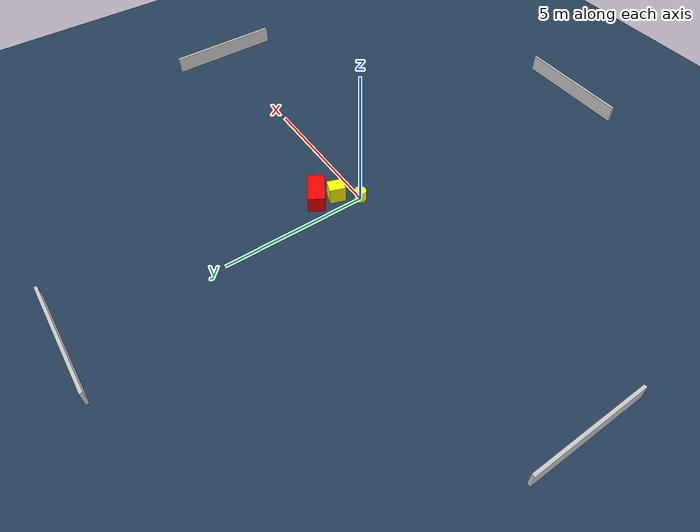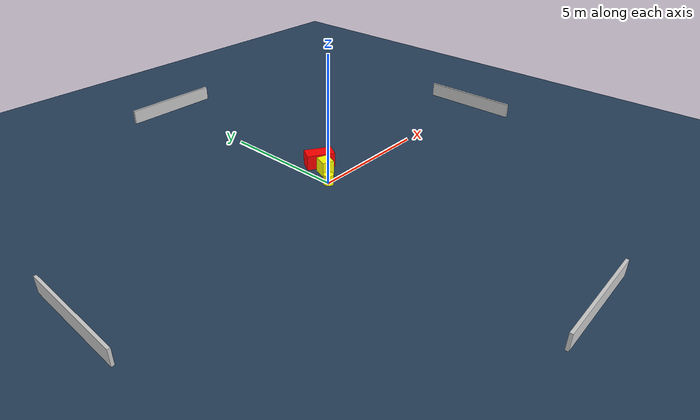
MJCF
<?xml version="1.0" ?>
<mujoco model="generated_environment">
  <option timestep="0.01" integrator="RK4" cone="elliptic"/>
  <default>
    <geom density="1"/>
  </default>
  <asset>
    <texture builtin="gradient" height="3072" name="skybox" rgb1="0.3 0.5 0.7" rgb2="0 0 0" type="skybox" width="512"/>
    <texture builtin="checker" height="300" name="groundplane" rgb1="0.2 0.3 0.4" rgb2="0.1 0.2 0.3" type="2d" width="300"/>
    <material name="groundplane" reflectance="0.2" texrepeat="5 5" texture="groundplane"/>
  </asset>
  <worldbody>
    <light dir="0 0 -1" directional="true" pos="0 0 1.5"/>
    <geom condim="3" friction="0.5 0.005 0.001" material="groundplane" name="floor" pos="0 0 0" size="0 0 0.05" type="plane"/>
    <body name="walls">
      <geom name="wall_1" condim="4" pos="-10.0 0.0 0.3" rgba="0.800000011920929 0.800000011920929 0.800000011920929 1.0" size="0.05 2.0 0.3" type="box"/>
      <geom name="wall_2" condim="4" pos="10.0 0.0 0.3" rgba="0.800000011920929 0.800000011920929 0.800000011920929 1.0" size="0.05 2.0 0.3" type="box"/>
      <geom name="wall_3" condim="4" pos="0.0 -10.0 0.3" rgba="0.800000011920929 0.800000011920929 0.800000011920929 1.0" size="2.0 0.05 0.3" type="box"/>
      <geom name="wall_4" condim="4" pos="0.0 10.0 0.3" rgba="0.800000011920929 0.800000011920929 0.800000011920929 1.0" size="2.0 0.05 0.3" type="box"/>
    </body>
    <body name="robot">
      <joint name="joint_x" type="slide" pos="0 0 0" axis="1 0 0"/>
      <joint name="joint_y" type="slide" pos="0 0 0" axis="0 1 0"/>
      <geom name="robot" type="cylinder" pos="0.0 0.0 0.2" size="0.2 0.2 0.0" mass="5.0" friction="1.0 0.005 0.0001" condim="4" rgba="1.0 1.0 0.0 1.0"/>
    </body>
    <body name="obstacle_1_movable">
      <geom name="obstacle_1_movable" condim="4" pos="0.5042326313691463 0.6268620307467936 0.3" euler="0 0 340.36939782040025" friction="0.0 0.005 0.001" rgba="1.0 1.0 0.0 1.0" size="0.22876052771214603 0.27694347719737383 0.3" type="box" mass="0.1"/>
      <joint type="free"/>
    </body>
    <body name="obstacle_2_static">
      <geom name="obstacle_2_static" condim="4" pos="0.8046557317814594 1.2201011060805833 0.3" euler="0 0 148.6579301385729" friction="0.0 0.005 0.001" rgba="1.0 0.0 0.0 1.0" size="0.5570921339634207 0.2897845448838718 0.3" type="box"/>
    </body>
  </worldbody>
  <actuator>
    <motor name="actuator_x" joint="joint_x" gear="1" ctrlrange="-1 1"/>
    <motor name="actuator_y" joint="joint_y" gear="1" ctrlrange="-1 1"/>
  </actuator>
</mujoco>
